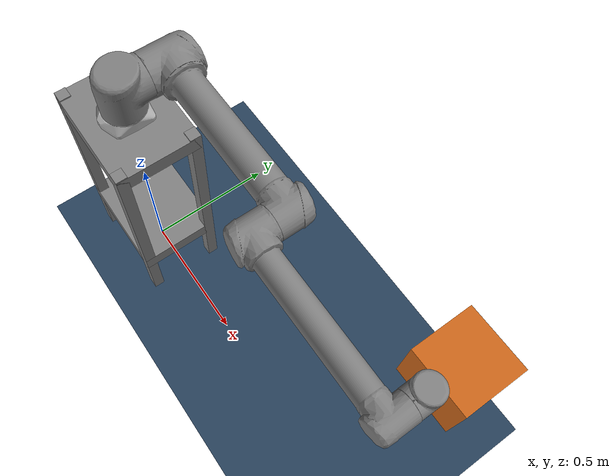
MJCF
<mujoco model="ur10">
  <compiler angle="radian"/>

  <!-- ================================ADDED CODE======================================= -->
  <option timestep="0.002" gravity="0 0 -9.81" integrator="Euler">
    <flag contact="enable" energy="enable"/>
  </option>
  <!-- ================================ADDED CODE======================================= -->

  <asset>
    <mesh name="base" content_type="model/stl" file="collision/base.stl"/>
    <mesh name="shoulder" content_type="model/stl" file="collision/shoulder.stl"/>
    <mesh name="upperarm" content_type="model/stl" file="collision/upperarm.stl"/>
    <mesh name="forearm" content_type="model/stl" file="collision/forearm.stl"/>
    <mesh name="wrist1" content_type="model/stl" file="collision/wrist1.stl"/>
    <mesh name="wrist2" content_type="model/stl" file="collision/wrist2.stl"/>
    <mesh name="wrist3" content_type="model/stl" file="collision/wrist3.stl"/>

    <!-- ================================ADDED CODE======================================= -->
    <texture type="2d" name="groundplane" builtin="checker" rgb1="0.2 0.3 0.4" rgb2="0.1 0.2 0.3" width="100" height="100"/>
    <material name="MatGnd" texture="groundplane" texrepeat="5 5" reflectance="0.2"/>
    <!-- ================================ADDED CODE======================================= -->
  </asset>

  <worldbody>
    <!-- ================================ADDED CODE======================================= -->
    <light pos="0 0 3" dir="0 0 -1" directional="true"/>
    <geom name="floor" type="plane" size="2.5 2.5 0.1" material="MatGnd"/>
    <camera name="front_cam" pos="0 0 100" xyaxes="0 -1 0 -1 0 0" />
    <!-- ================================ADDED CODE======================================= -->

    <!-- ================================ADDED CODE======================================= -->
    <body name="box_link" pos="0 0 0.435">
      <geom size=".20 .15 .03" pos="0 0 0.4" type="box" rgba="0.5 0.5 0.5 1"/>
      <geom size=".20 .15 .03" pos="0 0 -0.2" type="box" rgba="0.5 0.5 0.5 1"/>
      <geom size=".02 .02 .435" pos=".18 .13 0" type="box" rgba="0.5 0.5 0.5 1"/>
      <geom size=".02 .02 .435" pos="-.18 .13 0" type="box" rgba="0.5 0.5 0.5 1"/>
      <geom size=".02 .02 .435" pos=".18 -.13 0" type="box" rgba="0.5 0.5 0.5 1"/>
      <geom size=".02 .02 .435" pos="-.18 -.13 0" type="box" rgba="0.5 0.5 0.5 1"/>

          <body name="base_link" pos="0 0 0.435">
            <geom quat="-1 0 0 0" type="mesh" rgba="0.7 0.7 0.7 1" mesh="base"/>
        <!-- ================================ADDED CODE======================================= -->
            <body name="shoulder_link" pos="0 0 0.1273" quat="0 0 0 1">
              <inertial pos="0.021 -0.027 0" quat="0.988634 -0.000680926 0.148578 -0.0229591" mass="7.1" diaginertia="0.0353866 0.0352903 0.0202532"/>
              <joint name="shoulder_pan_joint" pos="0 0 0" axis="0 0 1" range="-6.28319 6.28319" actuatorfrcrange="-330 330"/>
              <geom quat="0 0 0 1" type="mesh" mesh="shoulder"/>
              <body name="upper_arm_link" quat="0.707107 0.707107 0 0">
                <inertial pos="-0.232 0 0.158" quat="0.500033 0.499784 0.489585 0.510381" mass="12.7" diaginertia="0.77068 0.769758 0.0278114"/>
                <joint name="shoulder_lift_joint" pos="0 0 0" axis="0 0 1" range="-6.28319 6.28319" actuatorfrcrange="-330 330"/>
                <geom pos="0 0 0.220941" quat="0.5 0.5 -0.5 -0.5" type="mesh" mesh="upperarm"/>
                <body name="forearm_link" pos="-0.612 0 0">
                  <inertial pos="-0.3323 0 0.068" quat="0.492051 0.507971 0.507346 0.492394" mass="4.27" diaginertia="0.30928 0.306743 0.00985709"/>
                  <joint name="elbow_joint" pos="0 0 0" axis="0 0 1" range="-3.14159 3.14159" actuatorfrcrange="-150 150"/>
                  <geom pos="0 0 0.049042" quat="0.5 0.5 -0.5 -0.5" type="mesh" mesh="forearm"/>
                  <body name="wrist_1_link" pos="-0.5723 0 0.163941">
                    <inertial pos="0 -0.018 0.007" quat="0.525776 0.850564 -0.0100431 9.45801e-05" mass="2" diaginertia="0.00296017 0.00269992 0.00209991"/>
                    <joint name="wrist_1_joint" pos="0 0 0" axis="0 0 1" range="-6.28319 6.28319" actuatorfrcrange="-56 56"/>
                    <geom pos="0 0 -0.1149" quat="0.707107 0.707107 0 0" type="mesh" mesh="wrist1"/>
                    <body name="wrist_2_link" pos="0 -0.1157 -2.37305e-11" quat="0.707107 0.707107 0 0">
                      <inertial pos="0 0.018 -0.007" quat="0.525776 0.850564 -0.0100431 9.45801e-05" mass="2" diaginertia="0.00296017 0.00269992 0.00209991"/>
                      <joint name="wrist_2_joint" pos="0 0 0" axis="0 0 1" range="-6.28319 6.28319" actuatorfrcrange="-56 56"/>
                      <geom pos="0 0 -0.1158" quat="1 0 0 0" type="mesh" mesh="wrist2"/>
                      <body name="wrist_3_link" pos="0 0.0922 -1.89105e-11" quat="0.707107 -0.707107 0 0">
                        <inertial pos="0 0 -0.026" quat="0.707107 0 0 0.707107" mass="0.365" diaginertia="0.00041 0.0004 0.00034"/>
                        <joint name="wrist_3_joint" pos="0 0 0" axis="0 0 1" range="-6.28319 6.28319" actuatorfrcrange="-56 56"/>
                        <geom pos="0 0 -0.0922" quat="0.707107 0.707107 0 0" type="mesh" mesh="wrist3"/>
                                                <!-- Box welded to tool0 (post-pick phase) -->
                        <body name="box" pos="0 0 0.05">   <!-- pos relative to parent -->
                          <!-- No joint = fixed to parent body -->
                          <geom name="box_geom" type="box" size="0.1 0.1 0.1"
                                mass="5.0" rgba="0.8 0.4 0.1 1"/>
                          <inertial pos="0 0 0" mass="5.0" diaginertia="0.001 0.001 0.001"/>
                        </body>
                      </body>
                    </body>
                  </body>
                </body>
              </body>
            </body>
    <!-- ================================ADDED CODE======================================= -->
          </body>
        </body>
    <!-- ================================ADDED CODE======================================= -->
  </worldbody>

  <!-- ================================ADDED CODE======================================= -->
  <actuator>
    <motor name="shoulder_pan_motor" joint="shoulder_pan_joint" ctrllimited="true" ctrlrange="-330 330"/>
    <motor name="shoulder_lift_motor" joint="shoulder_lift_joint" ctrllimited="true" ctrlrange="-330 330"/>
    <motor name="elbow_motor" joint="elbow_joint" ctrllimited="true" ctrlrange="-150 150"/>
    <motor name="wrist_1_motor" joint="wrist_1_joint" ctrllimited="true" ctrlrange="-56 56"/>
    <motor name="wrist_2_motor" joint="wrist_2_joint" ctrllimited="true" ctrlrange="-56 56"/>
    <motor name="wrist_3_motor" joint="wrist_3_joint" ctrllimited="true" ctrlrange="-56 56"/>
  </actuator>
  <!-- ================================ADDED CODE======================================= -->

</mujoco>
